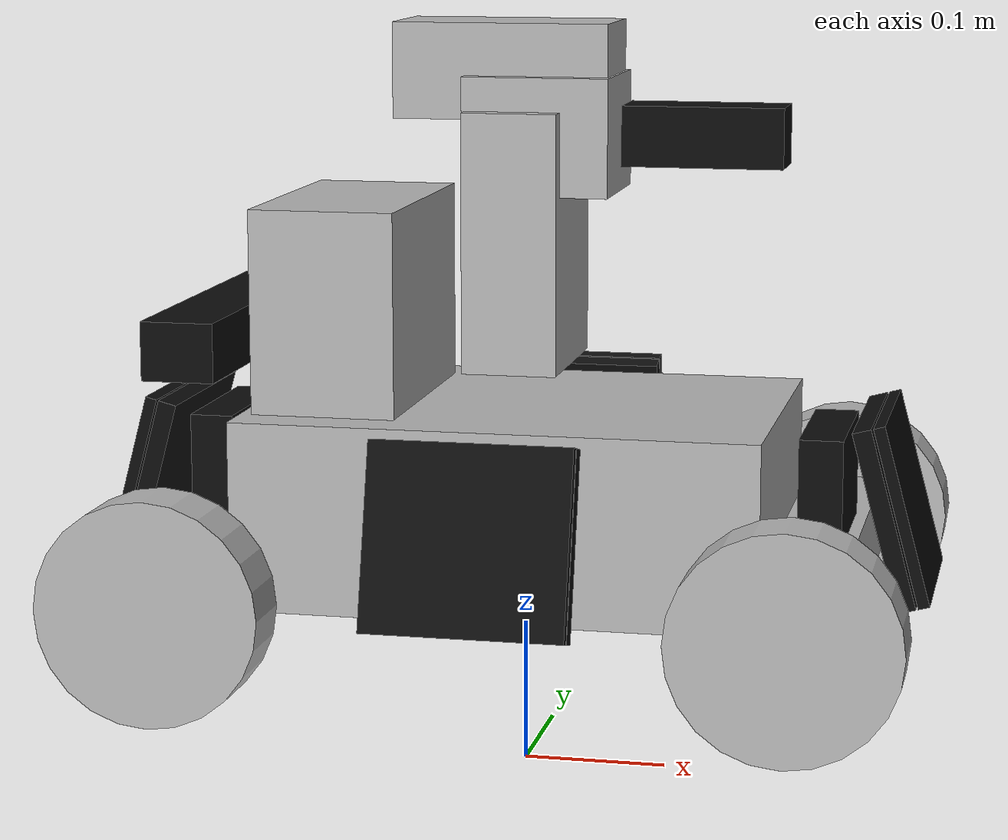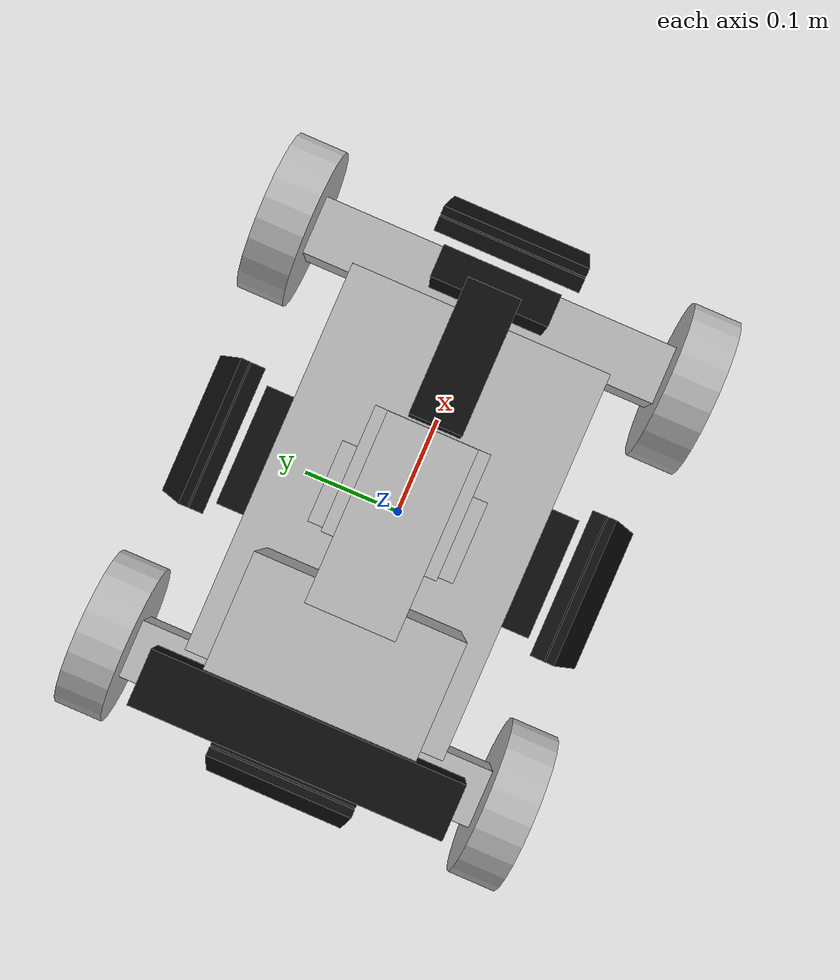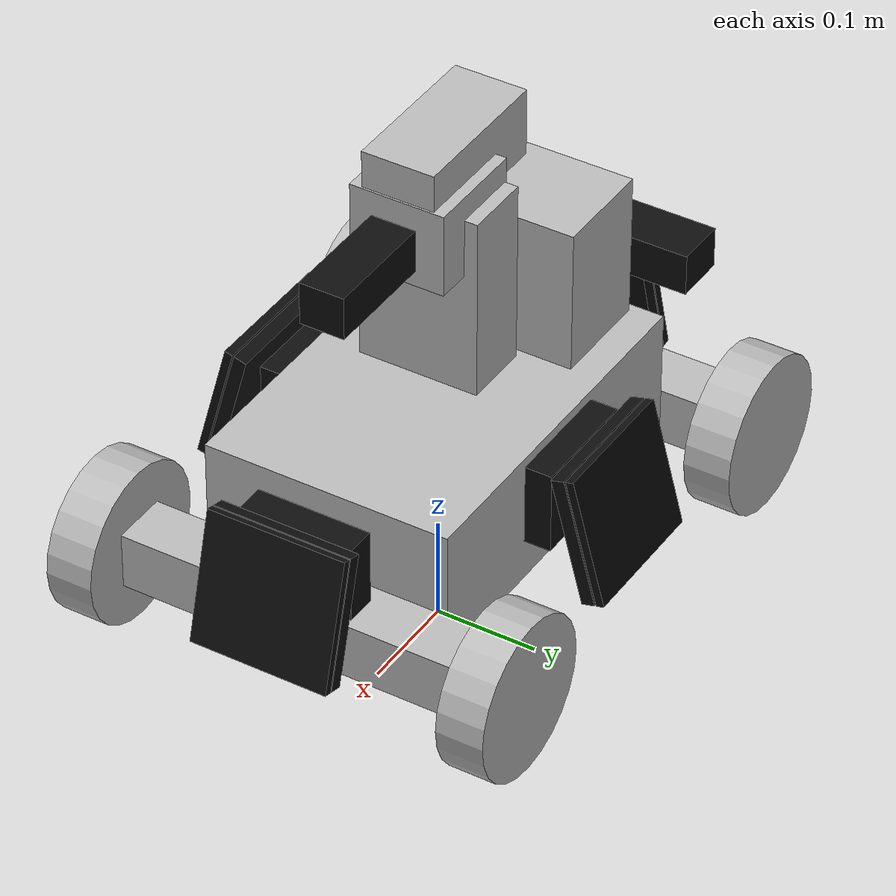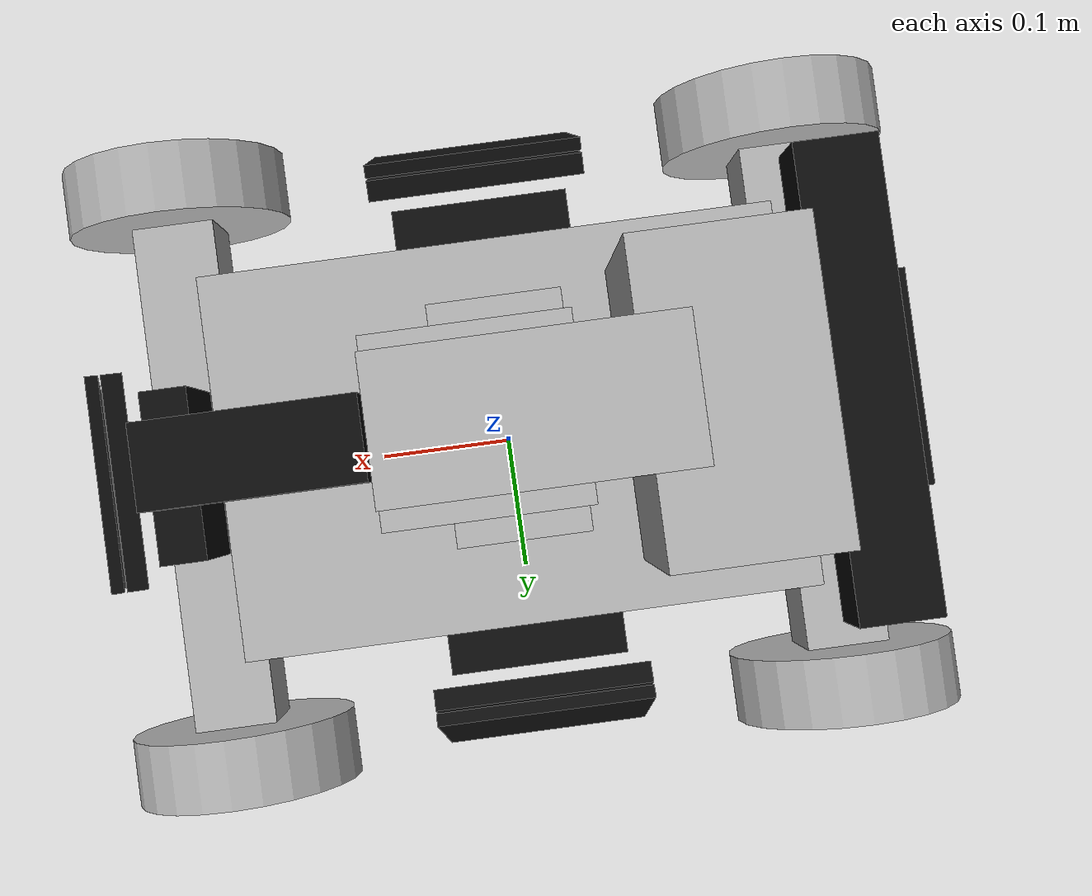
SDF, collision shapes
<?xml version="1.0" ?>
<!-- |    This document was autogenerated by xmacro4sdf from model.sdf.xmacro          | -->
<!-- |    EDITING THIS FILE BY HAND IS NOT RECOMMENDED                                 | -->
<sdf version="1.7">
	<!--include defination-->
	<!--property defination-->
	<!-- 底盘距离水平地面的高度 -->
	<!-- gimbal_yaw 相对于底盘的 z 轴安装偏移 -->
	<!-- gimbal_pitch 相对于 gimbal_yaw 的高度差 -->
	<!--rm25_example_robot model-->
	<model name="rm25_example_robot">
		<pose>0 0 0.15 0 0 0</pose>
		<link name="base_footprint"/>
		<joint name="base_to_chassis" type="fixed">
			<pose>0 0 0.076 0 0 0</pose>
			<parent>base_footprint</parent>
			<child>chassis</child>
		</joint>
		<!--chassis-->
		<link name="chassis">
			<inertial>
				<pose>0 0 0.055 0 0 0</pose>
				<mass>15.0</mass>
				<inertia>
					<ixx>0.093125</ixx>
					<ixy>0</ixy>
					<ixz>0</ixz>
					<iyy>0.18312499999999998</iyy>
					<iyz>0</iyz>
					<izz>0.23399999999999999</izz>
				</inertia>
			</inertial>
			<visual name="chassis_visual">
				<geometry>
					<mesh>
						<uri>model://rmua19_standard_robot/meshes/chassis_base.dae</uri>
					</mesh>
				</geometry>
			</visual>
			<collision name="chassis_base_collision">
				<pose>0 0 0.045 0 0 0</pose>
				<geometry>
					<box>
						<size>0.36 0.24 0.13</size>
					</box>
				</geometry>
			</collision>
			<collision name="chassis_projectile_container_collision">
				<pose>-0.122 0 0.177 0 0 0</pose>
				<geometry>
					<box>
						<size>0.1 0.18 0.146</size>
					</box>
				</geometry>
			</collision>
			<collision name="chassis_fornt_wheel_holder_collision">
				<pose>0.208 0 0 0 0 0</pose>
				<geometry>
					<box>
						<size>0.055 0.367 0.055</size>
					</box>
				</geometry>
			</collision>
			<collision name="chassis_rear_wheel_holder_collision">
				<pose>-0.208 0 0 0 0 0</pose>
				<geometry>
					<box>
						<size>0.055 0.367 0.055</size>
					</box>
				</geometry>
			</collision>
			<sensor name="chassis_imu" type="imu">
				<always_on>1</always_on>
				<update_rate>200</update_rate>
			</sensor>
		</link>
		<!--front_left wheel link and joint-->
		<joint name="front_left_wheel_joint" type="revolute">
			<pose relative_to="chassis">0.207 0.194 0 0 0 0</pose>
			<parent>chassis</parent>
			<child>front_left_wheel</child>
			<axis>
				<xyz>0 1 0</xyz>
				<limit>
					<lower>-1.79769e+308</lower>
					<upper>1.79769e+308</upper>
					<effort>1e+10</effort>
					<velocity>1e+10</velocity>
				</limit>
			</axis>
		</joint>
		<link name="front_left_wheel">
			<pose relative_to="front_left_wheel_joint">0 0 0 0 0 0</pose>
			<inertial>
				<pose>0 0 0 1.5707 0 0</pose>
				<mass>0.4</mass>
				<inertia>
					<ixx>0.0006426653333333334</ixx>
					<ixy>0</ixy>
					<ixz>0</ixz>
					<iyy>0.0006426653333333334</iyy>
					<iyz>0</iyz>
					<izz>0.0011491280000000001</izz>
				</inertia>
			</inertial>
			<visual name="front_left_wheel_visual">
				<geometry>
					<mesh>
						<uri>model://rmua19_standard_robot/meshes/wheel_left.dae</uri>
					</mesh>
				</geometry>
			</visual>
			<collision name="front_left_wheel_collision">
				<pose>0 0 0 1.5707 0 0</pose>
				<geometry>
					<cylinder>
						<radius>0.0758</radius>
						<length>0.0452</length>
					</cylinder>
				</geometry>
				<surface>
					<friction>
						<ode>
							<mu>0.2</mu>
							<mu2>0.2</mu2>
						</ode>
					</friction>
				</surface>
			</collision>
		</link>
		<!--front_right wheel link and joint-->
		<joint name="front_right_wheel_joint" type="revolute">
			<pose relative_to="chassis">0.207 -0.194 0 0 0 0</pose>
			<parent>chassis</parent>
			<child>front_right_wheel</child>
			<axis>
				<xyz>0 1 0</xyz>
				<limit>
					<lower>-1.79769e+308</lower>
					<upper>1.79769e+308</upper>
					<effort>1e+10</effort>
					<velocity>1e+10</velocity>
				</limit>
			</axis>
		</joint>
		<link name="front_right_wheel">
			<pose relative_to="front_right_wheel_joint">0 0 0 0 0 0</pose>
			<inertial>
				<pose>0 0 0 1.5707 0 0</pose>
				<mass>0.4</mass>
				<inertia>
					<ixx>0.0006426653333333334</ixx>
					<ixy>0</ixy>
					<ixz>0</ixz>
					<iyy>0.0006426653333333334</iyy>
					<iyz>0</iyz>
					<izz>0.0011491280000000001</izz>
				</inertia>
			</inertial>
			<visual name="front_right_wheel_visual">
				<geometry>
					<mesh>
						<uri>model://rmua19_standard_robot/meshes/wheel_right.dae</uri>
					</mesh>
				</geometry>
			</visual>
			<collision name="front_right_wheel_collision">
				<pose>0 0 0 1.5707 0 0</pose>
				<geometry>
					<cylinder>
						<radius>0.0758</radius>
						<length>0.0452</length>
					</cylinder>
				</geometry>
				<surface>
					<friction>
						<ode>
							<mu>0.2</mu>
							<mu2>0.2</mu2>
						</ode>
					</friction>
				</surface>
			</collision>
		</link>
		<!--rear_left wheel link and joint-->
		<joint name="rear_left_wheel_joint" type="revolute">
			<pose relative_to="chassis">-0.207 0.194 0 0 0 0</pose>
			<parent>chassis</parent>
			<child>rear_left_wheel</child>
			<axis>
				<xyz>0 1 0</xyz>
				<limit>
					<lower>-1.79769e+308</lower>
					<upper>1.79769e+308</upper>
					<effort>1e+10</effort>
					<velocity>1e+10</velocity>
				</limit>
			</axis>
		</joint>
		<link name="rear_left_wheel">
			<pose relative_to="rear_left_wheel_joint">0 0 0 0 0 0</pose>
			<inertial>
				<pose>0 0 0 1.5707 0 0</pose>
				<mass>0.4</mass>
				<inertia>
					<ixx>0.0006426653333333334</ixx>
					<ixy>0</ixy>
					<ixz>0</ixz>
					<iyy>0.0006426653333333334</iyy>
					<iyz>0</iyz>
					<izz>0.0011491280000000001</izz>
				</inertia>
			</inertial>
			<visual name="rear_left_wheel_visual">
				<geometry>
					<mesh>
						<uri>model://rmua19_standard_robot/meshes/wheel_right.dae</uri>
					</mesh>
				</geometry>
			</visual>
			<collision name="rear_left_wheel_collision">
				<pose>0 0 0 1.5707 0 0</pose>
				<geometry>
					<cylinder>
						<radius>0.0758</radius>
						<length>0.0452</length>
					</cylinder>
				</geometry>
				<surface>
					<friction>
						<ode>
							<mu>0.2</mu>
							<mu2>0.2</mu2>
						</ode>
					</friction>
				</surface>
			</collision>
		</link>
		<!--rear_right wheel link and joint-->
		<joint name="rear_right_wheel_joint" type="revolute">
			<pose relative_to="chassis">-0.207 -0.194 0 0 0 0</pose>
			<parent>chassis</parent>
			<child>rear_right_wheel</child>
			<axis>
				<xyz>0 1 0</xyz>
				<limit>
					<lower>-1.79769e+308</lower>
					<upper>1.79769e+308</upper>
					<effort>1e+10</effort>
					<velocity>1e+10</velocity>
				</limit>
			</axis>
		</joint>
		<link name="rear_right_wheel">
			<pose relative_to="rear_right_wheel_joint">0 0 0 0 0 0</pose>
			<inertial>
				<pose>0 0 0 1.5707 0 0</pose>
				<mass>0.4</mass>
				<inertia>
					<ixx>0.0006426653333333334</ixx>
					<ixy>0</ixy>
					<ixz>0</ixz>
					<iyy>0.0006426653333333334</iyy>
					<iyz>0</iyz>
					<izz>0.0011491280000000001</izz>
				</inertia>
			</inertial>
			<visual name="rear_right_wheel_visual">
				<geometry>
					<mesh>
						<uri>model://rmua19_standard_robot/meshes/wheel_left.dae</uri>
					</mesh>
				</geometry>
			</visual>
			<collision name="rear_right_wheel_collision">
				<pose>0 0 0 1.5707 0 0</pose>
				<geometry>
					<cylinder>
						<radius>0.0758</radius>
						<length>0.0452</length>
					</cylinder>
				</geometry>
				<surface>
					<friction>
						<ode>
							<mu>0.2</mu>
							<mu2>0.2</mu2>
						</ode>
					</friction>
				</surface>
			</collision>
		</link>
		<joint name="gimbal_yaw_odom_joint" type="revolute">
			<pose relative_to="chassis">0 0 0.1376 0 0 0</pose>
			<parent>chassis</parent>
			<child>gimbal_yaw_odom</child>
			<axis>
				<xyz>0 0 1</xyz>
				<limit>
					<effort>100</effort>
					<velocity>50</velocity>
					<lower>-1.79769e+308</lower>
					<upper>1.79769e+308</upper>
				</limit>
			</axis>
		</joint>
		<link name="gimbal_yaw_odom">
			<pose relative_to="gimbal_yaw_odom_joint">0 0 0 0 0 0</pose>
		</link>
		<joint name="gimbal_pitch_odom_joint" type="fixed">
			<pose relative_to="gimbal_yaw_odom">0 0 0.16 0 0 0</pose>
			<parent>gimbal_yaw_odom</parent>
			<child>gimbal_pitch_odom</child>
			<axis>
				<xyz>0 1 0</xyz>
				<limit>
					<effort>100</effort>
					<velocity>50</velocity>
					<lower>-0.785</lower>
					<upper>0.5652</upper>
				</limit>
			</axis>
		</joint>
		<link name="gimbal_pitch_odom">
			<pose relative_to="gimbal_pitch_odom_joint">0 0 0 0 0 0</pose>
		</link>
		<!--gimbal yaw module-->
		<joint name="gimbal_yaw_joint" type="revolute">
			<pose relative_to="gimbal_pitch_odom">0 0 -0.16 0 0 0</pose>
			<parent>gimbal_pitch_odom</parent>
			<child>gimbal_yaw</child>
			<axis>
				<xyz>0 0 1</xyz>
				<limit>
					<effort>100</effort>
					<velocity>50</velocity>
					<lower>-1.79769e+308</lower>
					<upper>1.79769e+308</upper>
				</limit>
			</axis>
		</joint>
		<link name="gimbal_yaw">
			<pose relative_to="gimbal_yaw_joint">0 0 0 0 0 0</pose>
			<inertial>
				<pose>0 0 0.06 0 0 0</pose>
				<mass>1.0</mass>
				<inertia>
					<ixx>0.003033333333333334</ixx>
					<ixy>0</ixy>
					<ixz>0</ixz>
					<iyy>0.003033333333333334</iyy>
					<iyz>0</iyz>
					<izz>0.0012500000000000002</izz>
				</inertia>
			</inertial>
			<visual name="visual">
				<geometry>
					<mesh>
						<uri>model://rmua19_standard_robot/meshes/gimbal_yaw.dae</uri>
					</mesh>
				</geometry>
			</visual>
			<collision name="collision">
				<pose>0 0 0.0885 0 0 0</pose>
				<geometry>
					<box>
						<size>0.065 0.117 0.177</size>
					</box>
				</geometry>
			</collision>
		</link>
		<!--gimbal pitch module-->
		<joint name="gimbal_pitch_joint" type="revolute">
			<pose relative_to="gimbal_yaw">0 0 0.16 0 0 0</pose>
			<parent>gimbal_yaw</parent>
			<child>gimbal_pitch</child>
			<axis>
				<xyz>0 1 0</xyz>
				<limit>
					<effort>100</effort>
					<lower>-0.785</lower>
					<upper>0.5652</upper>
					<velocity>50</velocity>
				</limit>
			</axis>
		</joint>
		<link name="gimbal_pitch">
			<pose relative_to="gimbal_pitch_joint">0 0 0 0 0 0</pose>
			<inertial>
				<pose>0.02 0 0 0 0 0</pose>
				<mass>0.5</mass>
				<inertia>
					<ixx>0.0007541666666666668</ixx>
					<ixy>0</ixy>
					<ixz>0</ixz>
					<iyy>0.0030208333333333337</iyy>
					<iyz>0</iyz>
					<izz>0.0029416666666666666</izz>
				</inertia>
			</inertial>
			<visual name="visual">
				<geometry>
					<mesh>
						<uri>model://rmua19_standard_robot/meshes/gimbal_pitch.dae</uri>
					</mesh>
				</geometry>
			</visual>
			<collision name="collision_main">
				<pose>0.015 0 0 0 0 0</pose>
				<geometry>
					<box>
						<size>0.1 0.0915 0.08</size>
					</box>
				</geometry>
			</collision>
			<collision name="collision_box">
				<pose>-0.011 0 0.043 0 0 0</pose>
				<geometry>
					<box>
						<size>0.14801 0.07 0.065</size>
					</box>
				</geometry>
			</collision>
			<sensor name="gimbal_imu" type="imu">
				<always_on>1</always_on>
				<update_rate>200</update_rate>
			</sensor>
		</link>
		<!--for referee system -->
		<!--front armors -->
		<joint name="armor_support_frame_0_joint" type="fixed">
			<pose relative_to="chassis">0.197 0 0.061 0 0 0</pose>
			<parent>chassis</parent>
			<child>armor_support_frame_0</child>
		</joint>
		<link name="armor_support_frame_0">
			<pose relative_to="armor_support_frame_0_joint">0 0 0 0 0 0</pose>
			<inertial>
				<pose>0.035 0 0 0 0 0</pose>
				<mass>0.1</mass>
				<inertia>
					<ixx>0.00023080833333333334</ixx>
					<ixy>0</ixy>
					<ixz>0</ixz>
					<iyy>0.00017014166666666668</iyy>
					<iyz>0</iyz>
					<izz>0.00014468333333333334</izz>
				</inertia>
			</inertial>
			<visual name="visual">
				<geometry>
					<mesh>
						<uri>model://rm21_armor_module/meshes/armor_support_frame.stl</uri>
					</mesh>
				</geometry>
				<material>
					<ambient>0.1 0.1 0.1</ambient>
					<diffuse>0.05 0.05 0.05</diffuse>
					<specular>0.6 0.6 0.6</specular>
				</material>
			</visual>
			<collision name="collision">
				<pose>0.015 0 0 0 0 0</pose>
				<geometry>
					<box>
						<size>0.03 0.11 0.08</size>
					</box>
				</geometry>
			</collision>
		</link>
		<joint name="armor_0_joint" type="fixed">
			<pose relative_to="armor_support_frame_0">0.075 0 -0.071 0 -0.262 0</pose>
			<parent>armor_support_frame_0</parent>
			<child>armor_0</child>
		</joint>
		<link name="armor_0">
			<pose relative_to="armor_0_joint">0 0 0 0 0 0</pose>
			<inertial>
				<pose>0 0 0.0625 0 0 0</pose>
				<mass>0.1</mass>
				<inertia>
					<ixx>0.0003065083333333333</ixx>
					<ixy>0</ixy>
					<ixz>0</ixz>
					<iyy>0.0001421774166666667</iyy>
					<iyz>0</iyz>
					<izz>0.0001670190833333333</izz>
				</inertia>
			</inertial>
			<visual name="visual">
				<geometry>
					<mesh>
						<uri>model://rm21_armor_module/meshes/small_armor.dae</uri>
					</mesh>
				</geometry>
				<material>
					<ambient>0.1 0.1 0.1</ambient>
					<diffuse>0.05 0.05 0.05</diffuse>
					<specular>0.6 0.6 0.6</specular>
				</material>
			</visual>
			<visual name="target_visual">
				<geometry>
					<mesh>
						<uri>model://rm21_armor_module/meshes/small_armor_target.dae</uri>
					</mesh>
				</geometry>
				<material>
					<ambient>0.1 0.1 0.1</ambient>
					<diffuse>0.05 0.05 0.05</diffuse>
					<specular>0.6 0.6 0.6</specular>
				</material>
			</visual>
			<visual name="armor_0_light_bar_visual">
				<geometry>
					<mesh>
						<uri>model://rm21_armor_module/meshes/small_armor_light_bar.dae</uri>
					</mesh>
				</geometry>
				<material>
					<ambient>1.0 1.0 1.0</ambient>
					<diffuse>1.0 1.0 1.0</diffuse>
					<emissive>1.0 1.0 1.0</emissive>
					<specular>0.5 0.5 0.5</specular>
				</material>
			</visual>
			<visual name="sticker_visual">
				<pose>0.014 0 0.0625 1.5708 0 1.5708</pose>
				<geometry>
					<plane>
						<normal>0 0 1</normal>
						<size>0.130 0.120</size>
					</plane>
				</geometry>
				<material>
					<ambient>1.0 1.0 1.0</ambient>
					<diffuse>1.0 1.0 1.0</diffuse>
					<specular>0.1 0.1 0.1</specular>
					<pbr>
						<metal>
							<albedo_map>model://rm21_armor_module/materials/textures/small_num1.png</albedo_map>
						</metal>
					</pbr>
				</material>
			</visual>
			<collision name="collision">
				<pose>0 0 0.0625 0 0 0</pose>
				<geometry>
					<box>
						<size>0.013 0.135 0.125</size>
					</box>
				</geometry>
			</collision>
			<collision name="target_collision">
				<pose>0.012 0 0.0625 0 0 0</pose>
				<geometry>
					<box>
						<size>0.008 0.135 0.125</size>
					</box>
				</geometry>
			</collision>
		</link>
		<!--left armors -->
		<joint name="armor_support_frame_1_joint" type="fixed">
			<pose relative_to="chassis">0 0.116 0.061 0 0 1.5708</pose>
			<parent>chassis</parent>
			<child>armor_support_frame_1</child>
		</joint>
		<link name="armor_support_frame_1">
			<pose relative_to="armor_support_frame_1_joint">0 0 0 0 0 0</pose>
			<inertial>
				<pose>0.035 0 0 0 0 0</pose>
				<mass>0.1</mass>
				<inertia>
					<ixx>0.00023080833333333334</ixx>
					<ixy>0</ixy>
					<ixz>0</ixz>
					<iyy>0.00017014166666666668</iyy>
					<iyz>0</iyz>
					<izz>0.00014468333333333334</izz>
				</inertia>
			</inertial>
			<visual name="visual">
				<geometry>
					<mesh>
						<uri>model://rm21_armor_module/meshes/armor_support_frame.stl</uri>
					</mesh>
				</geometry>
				<material>
					<ambient>0.1 0.1 0.1</ambient>
					<diffuse>0.05 0.05 0.05</diffuse>
					<specular>0.6 0.6 0.6</specular>
				</material>
			</visual>
			<collision name="collision">
				<pose>0.015 0 0 0 0 0</pose>
				<geometry>
					<box>
						<size>0.03 0.11 0.08</size>
					</box>
				</geometry>
			</collision>
		</link>
		<joint name="armor_1_joint" type="fixed">
			<pose relative_to="armor_support_frame_1">0.075 0 -0.071 0 -0.262 0</pose>
			<parent>armor_support_frame_1</parent>
			<child>armor_1</child>
		</joint>
		<link name="armor_1">
			<pose relative_to="armor_1_joint">0 0 0 0 0 0</pose>
			<inertial>
				<pose>0 0 0.0625 0 0 0</pose>
				<mass>0.1</mass>
				<inertia>
					<ixx>0.0003065083333333333</ixx>
					<ixy>0</ixy>
					<ixz>0</ixz>
					<iyy>0.0001421774166666667</iyy>
					<iyz>0</iyz>
					<izz>0.0001670190833333333</izz>
				</inertia>
			</inertial>
			<visual name="visual">
				<geometry>
					<mesh>
						<uri>model://rm21_armor_module/meshes/small_armor.dae</uri>
					</mesh>
				</geometry>
				<material>
					<ambient>0.1 0.1 0.1</ambient>
					<diffuse>0.05 0.05 0.05</diffuse>
					<specular>0.6 0.6 0.6</specular>
				</material>
			</visual>
			<visual name="target_visual">
				<geometry>
					<mesh>
						<uri>model://rm21_armor_module/meshes/small_armor_target.dae</uri>
					</mesh>
				</geometry>
				<material>
					<ambient>0.1 0.1 0.1</ambient>
					<diffuse>0.05 0.05 0.05</diffuse>
					<specular>0.6 0.6 0.6</specular>
				</material>
			</visual>
			<visual name="armor_1_light_bar_visual">
				<geometry>
					<mesh>
						<uri>model://rm21_armor_module/meshes/small_armor_light_bar.dae</uri>
					</mesh>
				</geometry>
				<material>
					<ambient>1.0 1.0 1.0</ambient>
					<diffuse>1.0 1.0 1.0</diffuse>
					<emissive>1.0 1.0 1.0</emissive>
					<specular>0.5 0.5 0.5</specular>
				</material>
			</visual>
			<visual name="sticker_visual">
				<pose>0.014 0 0.0625 1.5708 0 1.5708</pose>
				<geometry>
					<plane>
						<normal>0 0 1</normal>
						<size>0.130 0.120</size>
					</plane>
				</geometry>
				<material>
					<ambient>1.0 1.0 1.0</ambient>
					<diffuse>1.0 1.0 1.0</diffuse>
					<specular>0.1 0.1 0.1</specular>
					<pbr>
						<metal>
							<albedo_map>model://rm21_armor_module/materials/textures/small_num1.png</albedo_map>
						</metal>
					</pbr>
				</material>
			</visual>
			<collision name="collision">
				<pose>0 0 0.0625 0 0 0</pose>
				<geometry>
					<box>
						<size>0.013 0.135 0.125</size>
					</box>
				</geometry>
			</collision>
			<collision name="target_collision">
				<pose>0.012 0 0.0625 0 0 0</pose>
				<geometry>
					<box>
						<size>0.008 0.135 0.125</size>
					</box>
				</geometry>
			</collision>
		</link>
		<!--rear armors -->
		<joint name="armor_support_frame_2_joint" type="fixed">
			<pose relative_to="chassis">-0.197 0 0.061 0 0 3.14</pose>
			<parent>chassis</parent>
			<child>armor_support_frame_2</child>
		</joint>
		<link name="armor_support_frame_2">
			<pose relative_to="armor_support_frame_2_joint">0 0 0 0 0 0</pose>
			<inertial>
				<pose>0.035 0 0 0 0 0</pose>
				<mass>0.1</mass>
				<inertia>
					<ixx>0.00023080833333333334</ixx>
					<ixy>0</ixy>
					<ixz>0</ixz>
					<iyy>0.00017014166666666668</iyy>
					<iyz>0</iyz>
					<izz>0.00014468333333333334</izz>
				</inertia>
			</inertial>
			<visual name="visual">
				<geometry>
					<mesh>
						<uri>model://rm21_armor_module/meshes/armor_support_frame.stl</uri>
					</mesh>
				</geometry>
				<material>
					<ambient>0.1 0.1 0.1</ambient>
					<diffuse>0.05 0.05 0.05</diffuse>
					<specular>0.6 0.6 0.6</specular>
				</material>
			</visual>
			<collision name="collision">
				<pose>0.015 0 0 0 0 0</pose>
				<geometry>
					<box>
						<size>0.03 0.11 0.08</size>
					</box>
				</geometry>
			</collision>
		</link>
		<joint name="armor_2_joint" type="fixed">
			<pose relative_to="armor_support_frame_2">0.075 0 -0.071 0 -0.262 0</pose>
			<parent>armor_support_frame_2</parent>
			<child>armor_2</child>
		</joint>
		<link name="armor_2">
			<pose relative_to="armor_2_joint">0 0 0 0 0 0</pose>
			<inertial>
				<pose>0 0 0.0625 0 0 0</pose>
				<mass>0.1</mass>
				<inertia>
					<ixx>0.0003065083333333333</ixx>
					<ixy>0</ixy>
					<ixz>0</ixz>
					<iyy>0.0001421774166666667</iyy>
					<iyz>0</iyz>
					<izz>0.0001670190833333333</izz>
				</inertia>
			</inertial>
			<visual name="visual">
				<geometry>
					<mesh>
						<uri>model://rm21_armor_module/meshes/small_armor.dae</uri>
					</mesh>
				</geometry>
				<material>
					<ambient>0.1 0.1 0.1</ambient>
					<diffuse>0.05 0.05 0.05</diffuse>
					<specular>0.6 0.6 0.6</specular>
				</material>
			</visual>
			<visual name="target_visual">
				<geometry>
					<mesh>
						<uri>model://rm21_armor_module/meshes/small_armor_target.dae</uri>
					</mesh>
				</geometry>
				<material>
					<ambient>0.1 0.1 0.1</ambient>
					<diffuse>0.05 0.05 0.05</diffuse>
					<specular>0.6 0.6 0.6</specular>
				</material>
			</visual>
			<visual name="armor_2_light_bar_visual">
				<geometry>
					<mesh>
						<uri>model://rm21_armor_module/meshes/small_armor_light_bar.dae</uri>
					</mesh>
				</geometry>
				<material>
					<ambient>1.0 1.0 1.0</ambient>
					<diffuse>1.0 1.0 1.0</diffuse>
					<emissive>1.0 1.0 1.0</emissive>
					<specular>0.5 0.5 0.5</specular>
				</material>
			</visual>
			<visual name="sticker_visual">
				<pose>0.014 0 0.0625 1.5708 0 1.5708</pose>
				<geometry>
					<plane>
						<normal>0 0 1</normal>
						<size>0.130 0.120</size>
					</plane>
				</geometry>
				<material>
					<ambient>1.0 1.0 1.0</ambient>
					<diffuse>1.0 1.0 1.0</diffuse>
					<specular>0.1 0.1 0.1</specular>
					<pbr>
						<metal>
							<albedo_map>model://rm21_armor_module/materials/textures/small_num1.png</albedo_map>
						</metal>
					</pbr>
				</material>
			</visual>
			<collision name="collision">
				<pose>0 0 0.0625 0 0 0</pose>
				<geometry>
					<box>
						<size>0.013 0.135 0.125</size>
					</box>
				</geometry>
			</collision>
			<collision name="target_collision">
				<pose>0.012 0 0.0625 0 0 0</pose>
				<geometry>
					<box>
						<size>0.008 0.135 0.125</size>
					</box>
				</geometry>
			</collision>
		</link>
		<!--right armors -->
		<joint name="armor_support_frame_3_joint" type="fixed">
			<pose relative_to="chassis">0 -0.116 0.061 0 0 -1.5708</pose>
			<parent>chassis</parent>
			<child>armor_support_frame_3</child>
		</joint>
		<link name="armor_support_frame_3">
			<pose relative_to="armor_support_frame_3_joint">0 0 0 0 0 0</pose>
			<inertial>
				<pose>0.035 0 0 0 0 0</pose>
				<mass>0.1</mass>
				<inertia>
					<ixx>0.00023080833333333334</ixx>
					<ixy>0</ixy>
					<ixz>0</ixz>
					<iyy>0.00017014166666666668</iyy>
					<iyz>0</iyz>
					<izz>0.00014468333333333334</izz>
				</inertia>
			</inertial>
			<visual name="visual">
				<geometry>
					<mesh>
						<uri>model://rm21_armor_module/meshes/armor_support_frame.stl</uri>
					</mesh>
				</geometry>
				<material>
					<ambient>0.1 0.1 0.1</ambient>
					<diffuse>0.05 0.05 0.05</diffuse>
					<specular>0.6 0.6 0.6</specular>
				</material>
			</visual>
			<collision name="collision">
				<pose>0.015 0 0 0 0 0</pose>
				<geometry>
					<box>
						<size>0.03 0.11 0.08</size>
					</box>
				</geometry>
			</collision>
		</link>
		<joint name="armor_3_joint" type="fixed">
			<pose relative_to="armor_support_frame_3">0.075 0 -0.071 0 -0.262 0</pose>
			<parent>armor_support_frame_3</parent>
			<child>armor_3</child>
		</joint>
		<link name="armor_3">
			<pose relative_to="armor_3_joint">0 0 0 0 0 0</pose>
			<inertial>
				<pose>0 0 0.0625 0 0 0</pose>
				<mass>0.1</mass>
				<inertia>
					<ixx>0.0003065083333333333</ixx>
					<ixy>0</ixy>
					<ixz>0</ixz>
					<iyy>0.0001421774166666667</iyy>
					<iyz>0</iyz>
					<izz>0.0001670190833333333</izz>
				</inertia>
			</inertial>
			<visual name="visual">
				<geometry>
					<mesh>
						<uri>model://rm21_armor_module/meshes/small_armor.dae</uri>
					</mesh>
				</geometry>
				<material>
					<ambient>0.1 0.1 0.1</ambient>
					<diffuse>0.05 0.05 0.05</diffuse>
					<specular>0.6 0.6 0.6</specular>
				</material>
			</visual>
			<visual name="target_visual">
				<geometry>
					<mesh>
						<uri>model://rm21_armor_module/meshes/small_armor_target.dae</uri>
					</mesh>
				</geometry>
				<material>
					<ambient>0.1 0.1 0.1</ambient>
					<diffuse>0.05 0.05 0.05</diffuse>
					<specular>0.6 0.6 0.6</specular>
				</material>
			</visual>
			<visual name="armor_3_light_bar_visual">
				<geometry>
					<mesh>
						<uri>model://rm21_armor_module/meshes/small_armor_light_bar.dae</uri>
					</mesh>
				</geometry>
				<material>
					<ambient>1.0 1.0 1.0</ambient>
					<diffuse>1.0 1.0 1.0</diffuse>
					<emissive>1.0 1.0 1.0</emissive>
					<specular>0.5 0.5 0.5</specular>
				</material>
			</visual>
			<visual name="sticker_visual">
				<pose>0.014 0 0.0625 1.5708 0 1.5708</pose>
				<geometry>
					<plane>
						<normal>0 0 1</normal>
						<size>0.130 0.120</size>
					</plane>
				</geometry>
				<material>
					<ambient>1.0 1.0 1.0</ambient>
					<diffuse>1.0 1.0 1.0</diffuse>
					<specular>0.1 0.1 0.1</specular>
					<pbr>
						<metal>
							<albedo_map>model://rm21_armor_module/materials/textures/small_num1.png</albedo_map>
						</metal>
					</pbr>
				</material>
			</visual>
			<collision name="collision">
				<pose>0 0 0.0625 0 0 0</pose>
				<geometry>
					<box>
						<size>0.013 0.135 0.125</size>
					</box>
				</geometry>
			</collision>
			<collision name="target_collision">
				<pose>0.012 0 0.0625 0 0 0</pose>
				<geometry>
					<box>
						<size>0.008 0.135 0.125</size>
					</box>
				</geometry>
			</collision>
		</link>
		<!--light_indicator-->
		<joint name="light_indicator_joint" type="fixed">
			<pose relative_to="chassis">-0.207 0 0.1 0 0 0</pose>
			<parent>chassis</parent>
			<child>light_indicator</child>
		</joint>
		<link name="light_indicator">
			<pose relative_to="light_indicator_joint">0 0 0 0 0 0</pose>
			<inertial>
				<pose>0 0 0.04 0 0 0</pose>
				<mass>0.1</mass>
				<inertia>
					<ixx>0.0006666666666666669</ixx>
					<ixy>0</ixy>
					<ixz>0</ixz>
					<iyy>3.416666666666667e-05</iyy>
					<iyz>0</iyz>
					<izz>0.0006741666666666668</izz>
				</inertia>
			</inertial>
			<visual name="light_indicator_holder_visual">
				<geometry>
					<mesh>
						<uri>model://rm21_light_indicator_module/meshes/light_indicator_holder.dae</uri>
					</mesh>
				</geometry>
				<material>
					<ambient>0.1 0.1 0.1</ambient>
					<diffuse>0.05 0.05 0.05</diffuse>
					<specular>0.6 0.6 0.6</specular>
				</material>
			</visual>
			<visual name="light_indicator_light_bar_visual">
				<geometry>
					<mesh>
						<uri>model://rm21_light_indicator_module/meshes/light_indicator_bar.dae</uri>
					</mesh>
				</geometry>
				<material>
					<ambient>1.0 1.0 1.0</ambient>
					<diffuse>1.0 1.0 1.0</diffuse>
					<specular>0.5 0.5 0.5</specular>
				</material>
			</visual>
			<collision name="light_bar_collision">
				<pose>0 0 0.06 0 0 0</pose>
				<geometry>
					<box>
						<size>0.05 0.28 0.04</size>
					</box>
				</geometry>
			</collision>
		</link>
		<!--speed_monitor_17mm-->
		<joint name="speed_monitor_joint" type="fixed">
			<pose relative_to="gimbal_pitch">0.07 0 0 0 0 0</pose>
			<parent>gimbal_pitch</parent>
			<child>speed_monitor</child>
		</joint>
		<link name="speed_monitor">
			<pose relative_to="speed_monitor_joint">0 0 0 0 0 0</pose>
			<inertial>
				<pose>0.055 0 0 0 0 0</pose>
				<mass>0.1</mass>
				<inertia>
					<ixx>2.941666666666667e-05</ixx>
					<ixy>0</ixy>
					<ixz>0</ixz>
					<iyy>0.00011484166666666668</iyy>
					<iyz>0</iyz>
					<izz>0.00011624166666666668</izz>
				</inertia>
			</inertial>
			<visual name="visual">
				<geometry>
					<mesh>
						<uri>model://rm21_speed_monitor_module/meshes/speed_monitor_17mm.dae</uri>
					</mesh>
				</geometry>
				<material>
					<ambient>0.1 0.1 0.1</ambient>
					<diffuse>0.05 0.05 0.05</diffuse>
					<specular>0.6 0.6 0.6</specular>
				</material>
			</visual>
			<visual name="speed_monitor_light_bar_visual">
				<geometry>
					<mesh>
						<uri>model://rm21_speed_monitor_module/meshes/speed_monitor_17mm_light_bar.dae</uri>
					</mesh>
				</geometry>
				<material>
					<ambient>1.0 1.0 1.0</ambient>
					<diffuse>1.0 1.0 1.0</diffuse>
					<specular>0.5 0.5 0.5</specular>
				</material>
			</visual>
			<collision name="collision">
				<pose>0.055 0 0 0 0 0</pose>
				<geometry>
					<box>
						<size>0.11 0.043 0.041</size>
					</box>
				</geometry>
			</collision>
		</link>
		<!--plugins-->
		<!--plugin for light bar-->
		<plugin filename="LightBarController" name="ignition::gazebo::systems::LightBarController">
			<controller_name>color</controller_name>
			<link_visual>armor_0/armor_0_light_bar_visual</link_visual>
			<link_visual>armor_1/armor_1_light_bar_visual</link_visual>
			<link_visual>armor_2/armor_2_light_bar_visual</link_visual>
			<link_visual>armor_3/armor_3_light_bar_visual</link_visual>
			<link_visual>light_indicator/light_indicator_light_bar_visual</link_visual>
			<link_visual>speed_monitor/speed_monitor_light_bar_visual</link_visual>
			<initial_color>none</initial_color>
		</plugin>
		<!--plugin for joint state sensor-->
		<plugin filename="ignition-gazebo-joint-state-publisher-system" name="ignition::gazebo::systems::JointStatePublisher">
			<joint_name>gimbal_yaw_joint</joint_name>
			<joint_name>gimbal_pitch_joint</joint_name>
		</plugin>
		<!--plugin for chassis control-->
		<plugin filename="MecanumDrive2" name="ignition::gazebo::systems::MecanumDrive2">
			<chassis_link>chassis</chassis_link>
			<front_left_joint>front_left_wheel_joint</front_left_joint>
			<front_right_joint>front_right_wheel_joint</front_right_joint>
			<rear_left_joint>rear_left_wheel_joint</rear_left_joint>
			<rear_right_joint>rear_right_wheel_joint</rear_right_joint>
		</plugin>
		<!--plugin for gimbal control-->
		<plugin filename="ignition-gazebo-joint-position-controller-system" name="ignition::gazebo::systems::JointPositionController">
			<joint_name>gimbal_yaw_joint</joint_name>
			<p_gain>0.5</p_gain>
			<i_gain>0.01</i_gain>
			<d_gain>0.1</d_gain>
			<i_max>1</i_max>
			<i_min>-1</i_min>
			<cmd_max>30</cmd_max>
			<cmd_min>-30</cmd_min>
		</plugin>
		<plugin filename="ignition-gazebo-joint-position-controller-system" name="ignition::gazebo::systems::JointPositionController">
			<joint_name>gimbal_pitch_joint</joint_name>
			<p_gain>0.8</p_gain>
			<i_gain>0.05</i_gain>
			<d_gain>0.2</d_gain>
			<i_max>10</i_max>
			<i_min>-10</i_min>
			<cmd_max>50</cmd_max>
			<cmd_min>-50</cmd_min>
		</plugin>
	</model>
</sdf>
